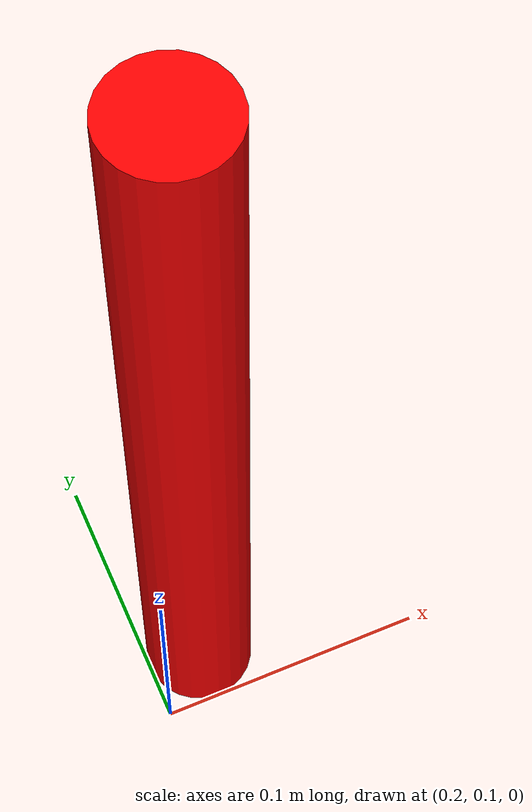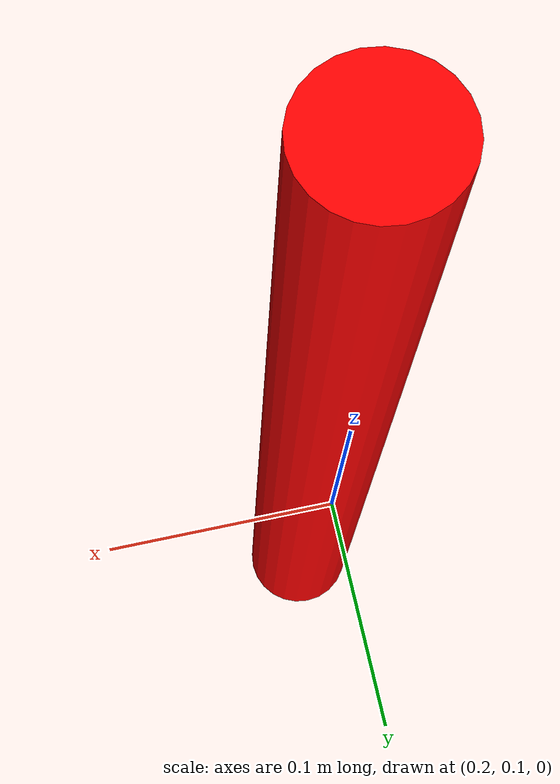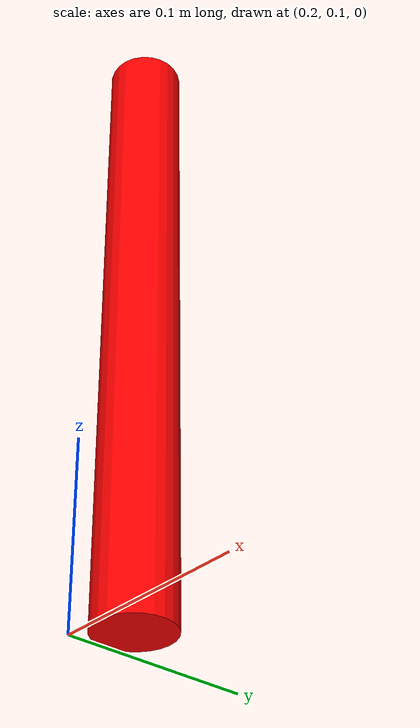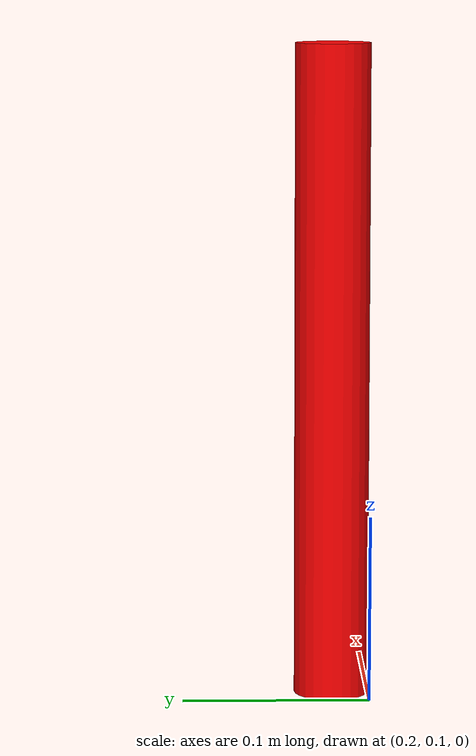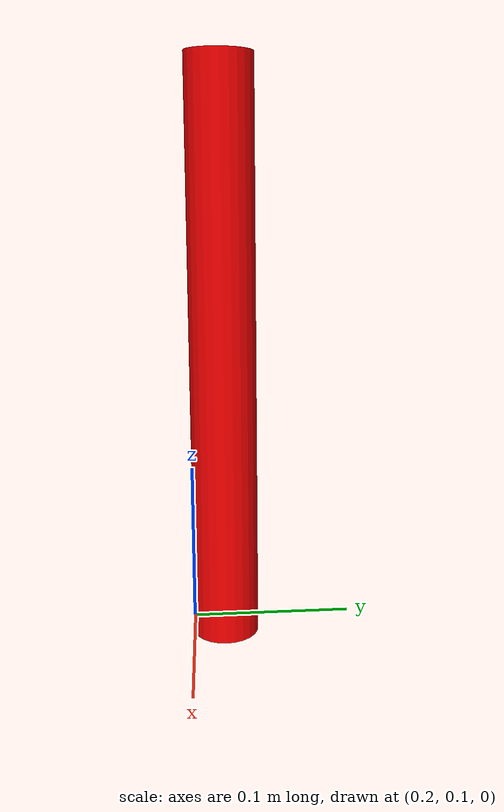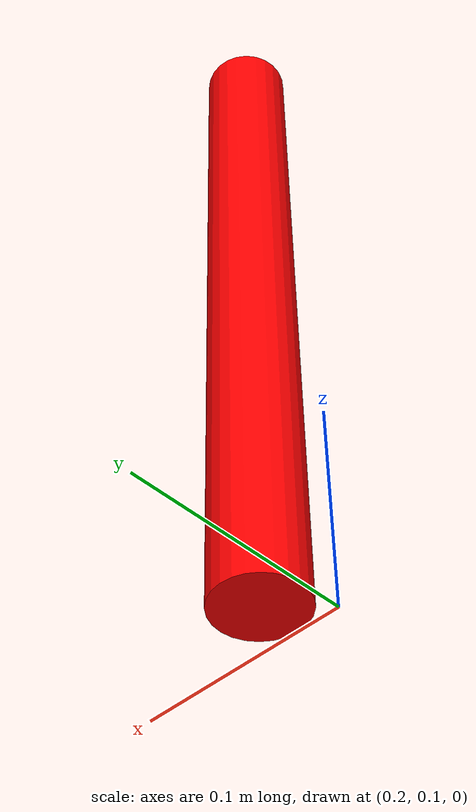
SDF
<?xml version="1.0" ?>
<sdf version="1.7">
  <model name="red_cylinder">
    <pose>0.22 0.12 0.175 0 0 0</pose>
    <link name="link">
      <inertial>
        <mass>1.0</mass>
        <inertia>
          <ixx>0.01</ixx>
          <iyy>0.01</iyy>
          <izz>0.01</izz>
        </inertia>
      </inertial>
      <collision name="collision">
        <geometry>
          <cylinder>
            <radius>0.02</radius>
            <length>0.35</length>
          </cylinder>
        </geometry>
        <surface>
          <friction>
            <ode>
              <mu>1.0</mu>
              <mu2>1.0</mu2>
            </ode>
          </friction>
        </surface>
      </collision>
      <visual name="visual">
        <geometry>
          <cylinder>
            <radius>0.02</radius>
            <length>0.35</length>
          </cylinder>
        </geometry>
        <material>
          <ambient>1 0 0 1</ambient>
          <diffuse>1 0 0 1</diffuse>
          <specular>0.5 0.5 0.5 1</specular>
        </material>
      </visual>
    </link>
  </model>
</sdf>
